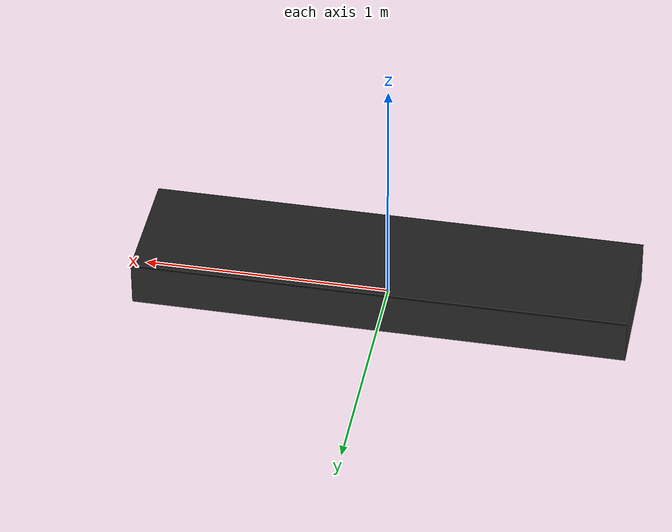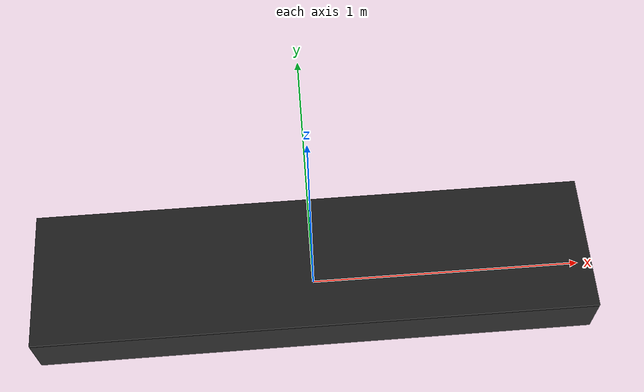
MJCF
<?xml version="1.0" ?>
<mujoco model="conveyor">
    <compiler angle="radian" autolimits="true"/>

    <worldbody>
        <body name="conveyor">
            <!-- Structural frame (no self-collision with belt surface) -->
            <geom name="belt_frame" type="box" pos="0 0 0.09"
                  size="1.0 0.25 0.09" rgba="0.25 0.25 0.25 1"
                  contype="0" conaffinity="0"/>

            <body name="belt_surface" pos="0 0 0.185">
                <joint name="belt_slide" type="slide" axis="1 0 0" damping="50"/>
                <geom name="belt_surface" type="box"
                      size="1.0 0.25 0.005"
                      rgba="0.1 0.1 0.1 1"
                      friction="1.5 0.01 0.01"
                      condim="4"/>
            </body>
        </body>
    </worldbody>

    <actuator>
        <general name="belt_drive" joint="belt_slide" gainprm="50"
                 ctrlrange="-2 2"/>
    </actuator>
</mujoco>
